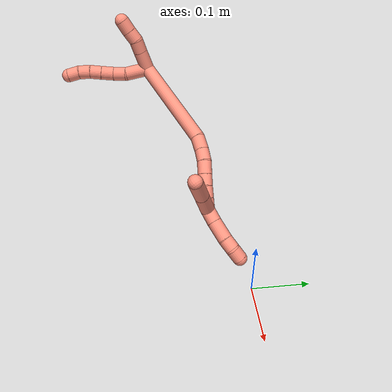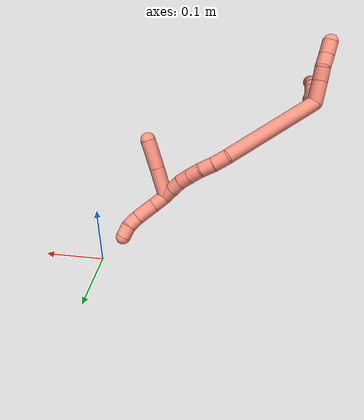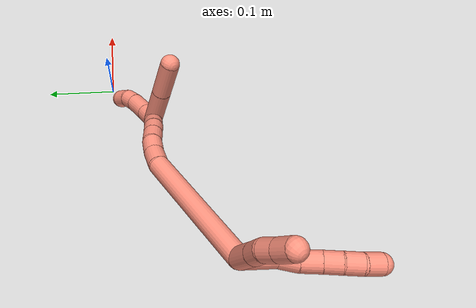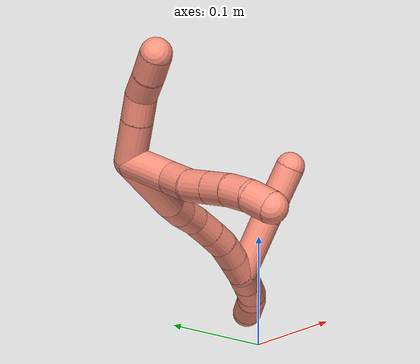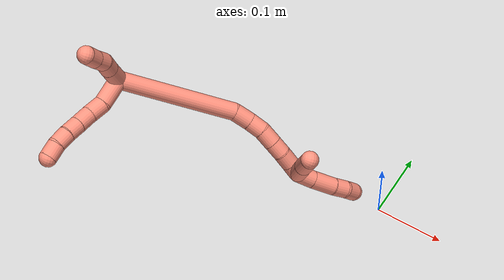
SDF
<sdf version="1.7">
 <world name="default">
  <model name="16">
   <static>0</static>
   <link name="16">
    <collision name="collision-cylinder-e_1_2_8">
     <pose>0.012279 -0.014389 0.007598 1.08495 0.646449 0.398484</pose>
     <geometry><cylinder><radius>0.0125</radius><length>0.040771</length></cylinder></geometry>
     <surface>
      <friction><ode><mu>1.16</mu><mu2>1.16</mu2><slip1>0</slip1><slip2>0</slip2></ode></friction>
      <contact><ode><kp>1e+06</kp><kd>1</kd><max_vel>0</max_vel><min_depth>0.001</min_depth></ode></contact>
     </surface>
    </collision>
    <visual name="visual-cylinder-e_1_2_8">
     <pose>0.012279 -0.014389 0.007598 1.08495 0.646449 0.398484</pose>
     <geometry><cylinder><radius>0.0125</radius><length>0.040771</length></cylinder></geometry>
     <material><ambient>1 0.576471 0.494118 1</ambient></material>
    </visual>
    <collision name="collision-cylinder-e_2_8_9">
     <pose>0.029926 -0.036176 0.022529 0.789854 0.47588 0.201505</pose>
     <geometry><cylinder><radius>0.0125</radius><length>0.023434</length></cylinder></geometry>
     <surface>
      <friction><ode><mu>1.16</mu><mu2>1.16</mu2><slip1>0</slip1><slip2>0</slip2></ode></friction>
      <contact><ode><kp>1e+06</kp><kd>1</kd><max_vel>0</max_vel><min_depth>0.001</min_depth></ode></contact>
     </surface>
    </collision>
    <visual name="visual-cylinder-e_2_8_9">
     <pose>0.029926 -0.036176 0.022529 0.789854 0.47588 0.201505</pose>
     <geometry><cylinder><radius>0.0125</radius><length>0.023434</length></cylinder></geometry>
     <material><ambient>1 0.576471 0.494118 1</ambient></material>
    </visual>
    <collision name="collision-cylinder-e_3_9_10">
     <pose>0.042499 -0.049535 0.036875 0.704432 0.664036 0.252099</pose>
     <geometry><cylinder><radius>0.0125</radius><length>0.023381</length></cylinder></geometry>
     <surface>
      <friction><ode><mu>1.16</mu><mu2>1.16</mu2><slip1>0</slip1><slip2>0</slip2></ode></friction>
      <contact><ode><kp>1e+06</kp><kd>1</kd><max_vel>0</max_vel><min_depth>0.001</min_depth></ode></contact>
     </surface>
    </collision>
    <visual name="visual-cylinder-e_3_9_10">
     <pose>0.042499 -0.049535 0.036875 0.704432 0.664036 0.252099</pose>
     <geometry><cylinder><radius>0.0125</radius><length>0.023381</length></cylinder></geometry>
     <material><ambient>1 0.576471 0.494118 1</ambient></material>
    </visual>
    <collision name="collision-cylinder-e_4_10_11">
     <pose>0.055931 -0.06075 0.050218 0.692808 0.648148 0.241326</pose>
     <geometry><cylinder><radius>0.0125</radius><length>0.020631</length></cylinder></geometry>
     <surface>
      <friction><ode><mu>1.16</mu><mu2>1.16</mu2><slip1>0</slip1><slip2>0</slip2></ode></friction>
      <contact><ode><kp>1e+06</kp><kd>1</kd><max_vel>0</max_vel><min_depth>0.001</min_depth></ode></contact>
     </surface>
    </collision>
    <visual name="visual-cylinder-e_4_10_11">
     <pose>0.055931 -0.06075 0.050218 0.692808 0.648148 0.241326</pose>
     <geometry><cylinder><radius>0.0125</radius><length>0.020631</length></cylinder></geometry>
     <material><ambient>1 0.576471 0.494118 1</ambient></material>
    </visual>
    <collision name="collision-cylinder-e_5_11_12">
     <pose>0.068225 -0.072422 0.062136 0.85437 0.619144 0.289176</pose>
     <geometry><cylinder><radius>0.0125</radius><length>0.020906</length></cylinder></geometry>
     <surface>
      <friction><ode><mu>1.16</mu><mu2>1.16</mu2><slip1>0</slip1><slip2>0</slip2></ode></friction>
      <contact><ode><kp>1e+06</kp><kd>1</kd><max_vel>0</max_vel><min_depth>0.001</min_depth></ode></contact>
     </surface>
    </collision>
    <visual name="visual-cylinder-e_5_11_12">
     <pose>0.068225 -0.072422 0.062136 0.85437 0.619144 0.289176</pose>
     <geometry><cylinder><radius>0.0125</radius><length>0.020906</length></cylinder></geometry>
     <material><ambient>1 0.576471 0.494118 1</ambient></material>
    </visual>
    <collision name="collision-cylinder-e_6_12_6">
     <pose>0.080094 -0.086711 0.071384 1.13566 0.589378 0.382513</pose>
     <geometry><cylinder><radius>0.0125</radius><length>0.020878</length></cylinder></geometry>
     <surface>
      <friction><ode><mu>1.16</mu><mu2>1.16</mu2><slip1>0</slip1><slip2>0</slip2></ode></friction>
      <contact><ode><kp>1e+06</kp><kd>1</kd><max_vel>0</max_vel><min_depth>0.001</min_depth></ode></contact>
     </surface>
    </collision>
    <visual name="visual-cylinder-e_6_12_6">
     <pose>0.080094 -0.086711 0.071384 1.13566 0.589378 0.382513</pose>
     <geometry><cylinder><radius>0.0125</radius><length>0.020878</length></cylinder></geometry>
     <material><ambient>1 0.576471 0.494118 1</ambient></material>
    </visual>
    <collision name="collision-cylinder-e_1_2_13">
     <pose>0.008433 0.010195 0.012185 -0.696728 0.487997 -0.180341</pose>
     <geometry><cylinder><radius>0.0125</radius><length>0.035975</length></cylinder></geometry>
     <surface>
      <friction><ode><mu>1.16</mu><mu2>1.16</mu2><slip1>0</slip1><slip2>0</slip2></ode></friction>
      <contact><ode><kp>1e+06</kp><kd>1</kd><max_vel>0</max_vel><min_depth>0.001</min_depth></ode></contact>
     </surface>
    </collision>
    <visual name="visual-cylinder-e_1_2_13">
     <pose>0.008433 0.010195 0.012185 -0.696728 0.487997 -0.180341</pose>
     <geometry><cylinder><radius>0.0125</radius><length>0.035975</length></cylinder></geometry>
     <material><ambient>1 0.576471 0.494118 1</ambient></material>
    </visual>
    <collision name="collision-cylinder-e_2_13_14">
     <pose>0.022013 0.026825 0.031473 -0.736015 0.492764 -0.193332</pose>
     <geometry><cylinder><radius>0.0125</radius><length>0.021757</length></cylinder></geometry>
     <surface>
      <friction><ode><mu>1.16</mu><mu2>1.16</mu2><slip1>0</slip1><slip2>0</slip2></ode></friction>
      <contact><ode><kp>1e+06</kp><kd>1</kd><max_vel>0</max_vel><min_depth>0.001</min_depth></ode></contact>
     </surface>
    </collision>
    <visual name="visual-cylinder-e_2_13_14">
     <pose>0.022013 0.026825 0.031473 -0.736015 0.492764 -0.193332</pose>
     <geometry><cylinder><radius>0.0125</radius><length>0.021757</length></cylinder></geometry>
     <material><ambient>1 0.576471 0.494118 1</ambient></material>
    </visual>
    <collision name="collision-cylinder-e_3_14_15">
     <pose>0.032276 0.036157 0.046723 -0.341766 0.53438 -0.094405</pose>
     <geometry><cylinder><radius>0.0125</radius><length>0.020093</length></cylinder></geometry>
     <surface>
      <friction><ode><mu>1.16</mu><mu2>1.16</mu2><slip1>0</slip1><slip2>0</slip2></ode></friction>
      <contact><ode><kp>1e+06</kp><kd>1</kd><max_vel>0</max_vel><min_depth>0.001</min_depth></ode></contact>
     </surface>
    </collision>
    <visual name="visual-cylinder-e_3_14_15">
     <pose>0.032276 0.036157 0.046723 -0.341766 0.53438 -0.094405</pose>
     <geometry><cylinder><radius>0.0125</radius><length>0.020093</length></cylinder></geometry>
     <material><ambient>1 0.576471 0.494118 1</ambient></material>
    </visual>
    <collision name="collision-cylinder-e_4_15_5">
     <pose>0.04306 0.043065 0.063514 -0.434324 0.536484 -0.121145</pose>
     <geometry><cylinder><radius>0.0125</radius><length>0.022175</length></cylinder></geometry>
     <surface>
      <friction><ode><mu>1.16</mu><mu2>1.16</mu2><slip1>0</slip1><slip2>0</slip2></ode></friction>
      <contact><ode><kp>1e+06</kp><kd>1</kd><max_vel>0</max_vel><min_depth>0.001</min_depth></ode></contact>
     </surface>
    </collision>
    <visual name="visual-cylinder-e_4_15_5">
     <pose>0.04306 0.043065 0.063514 -0.434324 0.536484 -0.121145</pose>
     <geometry><cylinder><radius>0.0125</radius><length>0.022175</length></cylinder></geometry>
     <material><ambient>1 0.576471 0.494118 1</ambient></material>
    </visual>
    <collision name="collision-cylinder-e_1_2_16">
     <pose>0.00559 0.003261 -0.084385 -3.10297 0.066099 -2.08424</pose>
     <geometry><cylinder><radius>0.0125</radius><length>0.169265</length></cylinder></geometry>
     <surface>
      <friction><ode><mu>1.16</mu><mu2>1.16</mu2><slip1>0</slip1><slip2>0</slip2></ode></friction>
      <contact><ode><kp>1e+06</kp><kd>1</kd><max_vel>0</max_vel><min_depth>0.001</min_depth></ode></contact>
     </surface>
    </collision>
    <visual name="visual-cylinder-e_1_2_16">
     <pose>0.00559 0.003261 -0.084385 -3.10297 0.066099 -2.08424</pose>
     <geometry><cylinder><radius>0.0125</radius><length>0.169265</length></cylinder></geometry>
     <material><ambient>1 0.576471 0.494118 1</ambient></material>
    </visual>
    <collision name="collision-cylinder-e_2_16_17">
     <pose>0.014055 0.003972 -0.180842 2.93349 0.228916 1.66674</pose>
     <geometry><cylinder><radius>0.0125</radius><length>0.02534</length></cylinder></geometry>
     <surface>
      <friction><ode><mu>1.16</mu><mu2>1.16</mu2><slip1>0</slip1><slip2>0</slip2></ode></friction>
      <contact><ode><kp>1e+06</kp><kd>1</kd><max_vel>0</max_vel><min_depth>0.001</min_depth></ode></contact>
     </surface>
    </collision>
    <visual name="visual-cylinder-e_2_16_17">
     <pose>0.014055 0.003972 -0.180842 2.93349 0.228916 1.66674</pose>
     <geometry><cylinder><radius>0.0125</radius><length>0.02534</length></cylinder></geometry>
     <material><ambient>1 0.576471 0.494118 1</ambient></material>
    </visual>
    <collision name="collision-cylinder-e_3_17_18">
     <pose>0.020701 -0.000912 -0.203003 2.91418 0.349275 1.99272</pose>
     <geometry><cylinder><radius>0.0125</radius><length>0.022039</length></cylinder></geometry>
     <surface>
      <friction><ode><mu>1.16</mu><mu2>1.16</mu2><slip1>0</slip1><slip2>0</slip2></ode></friction>
      <contact><ode><kp>1e+06</kp><kd>1</kd><max_vel>0</max_vel><min_depth>0.001</min_depth></ode></contact>
     </surface>
    </collision>
    <visual name="visual-cylinder-e_3_17_18">
     <pose>0.020701 -0.000912 -0.203003 2.91418 0.349275 1.99272</pose>
     <geometry><cylinder><radius>0.0125</radius><length>0.022039</length></cylinder></geometry>
     <material><ambient>1 0.576471 0.494118 1</ambient></material>
    </visual>
    <collision name="collision-cylinder-e_4_18_19">
     <pose>0.02838 -0.008184 -0.222826 2.67221 0.343715 1.25584</pose>
     <geometry><cylinder><radius>0.0125</radius><length>0.023188</length></cylinder></geometry>
     <surface>
      <friction><ode><mu>1.16</mu><mu2>1.16</mu2><slip1>0</slip1><slip2>0</slip2></ode></friction>
      <contact><ode><kp>1e+06</kp><kd>1</kd><max_vel>0</max_vel><min_depth>0.001</min_depth></ode></contact>
     </surface>
    </collision>
    <visual name="visual-cylinder-e_4_18_19">
     <pose>0.02838 -0.008184 -0.222826 2.67221 0.343715 1.25584</pose>
     <geometry><cylinder><radius>0.0125</radius><length>0.023188</length></cylinder></geometry>
     <material><ambient>1 0.576471 0.494118 1</ambient></material>
    </visual>
    <collision name="collision-cylinder-e_5_19_20">
     <pose>0.035363 -0.017559 -0.241025 2.65872 0.311427 1.13511</pose>
     <geometry><cylinder><radius>0.0125</radius><length>0.020078</length></cylinder></geometry>
     <surface>
      <friction><ode><mu>1.16</mu><mu2>1.16</mu2><slip1>0</slip1><slip2>0</slip2></ode></friction>
      <contact><ode><kp>1e+06</kp><kd>1</kd><max_vel>0</max_vel><min_depth>0.001</min_depth></ode></contact>
     </surface>
    </collision>
    <visual name="visual-cylinder-e_5_19_20">
     <pose>0.035363 -0.017559 -0.241025 2.65872 0.311427 1.13511</pose>
     <geometry><cylinder><radius>0.0125</radius><length>0.020078</length></cylinder></geometry>
     <material><ambient>1 0.576471 0.494118 1</ambient></material>
    </visual>
    <collision name="collision-cylinder-e_6_20_21">
     <pose>0.039977 -0.027103 -0.257966 2.59943 0.154176 0.542164</pose>
     <geometry><cylinder><radius>0.0125</radius><length>0.020032</length></cylinder></geometry>
     <surface>
      <friction><ode><mu>1.16</mu><mu2>1.16</mu2><slip1>0</slip1><slip2>0</slip2></ode></friction>
      <contact><ode><kp>1e+06</kp><kd>1</kd><max_vel>0</max_vel><min_depth>0.001</min_depth></ode></contact>
     </surface>
    </collision>
    <visual name="visual-cylinder-e_6_20_21">
     <pose>0.039977 -0.027103 -0.257966 2.59943 0.154176 0.542164</pose>
     <geometry><cylinder><radius>0.0125</radius><length>0.020032</length></cylinder></geometry>
     <material><ambient>1 0.576471 0.494118 1</ambient></material>
    </visual>
    <collision name="collision-cylinder-e_7_21_1">
     <pose>0.042786 -0.037565 -0.274828 2.57315 0.127036 0.428753</pose>
     <geometry><cylinder><radius>0.0125</radius><length>0.020058</length></cylinder></geometry>
     <surface>
      <friction><ode><mu>1.16</mu><mu2>1.16</mu2><slip1>0</slip1><slip2>0</slip2></ode></friction>
      <contact><ode><kp>1e+06</kp><kd>1</kd><max_vel>0</max_vel><min_depth>0.001</min_depth></ode></contact>
     </surface>
    </collision>
    <visual name="visual-cylinder-e_7_21_1">
     <pose>0.042786 -0.037565 -0.274828 2.57315 0.127036 0.428753</pose>
     <geometry><cylinder><radius>0.0125</radius><length>0.020058</length></cylinder></geometry>
     <material><ambient>1 0.576471 0.494118 1</ambient></material>
    </visual>
    <collision name="collision-cylinder-e_1_1_22">
     <pose>0.062244 -0.026662 -0.275256 -1.11572 0.787795 -0.507487</pose>
     <geometry><cylinder><radius>0.0125</radius><length>0.05132</length></cylinder></geometry>
     <surface>
      <friction><ode><mu>1.16</mu><mu2>1.16</mu2><slip1>0</slip1><slip2>0</slip2></ode></friction>
      <contact><ode><kp>1e+06</kp><kd>1</kd><max_vel>0</max_vel><min_depth>0.001</min_depth></ode></contact>
     </surface>
    </collision>
    <visual name="visual-cylinder-e_1_1_22">
     <pose>0.062244 -0.026662 -0.275256 -1.11572 0.787795 -0.507487</pose>
     <geometry><cylinder><radius>0.0125</radius><length>0.05132</length></cylinder></geometry>
     <material><ambient>1 0.576471 0.494118 1</ambient></material>
    </visual>
    <collision name="collision-cylinder-e_2_22_4">
     <pose>0.097924 0.004933 -0.260141 -1.13406 0.80186 -0.527286</pose>
     <geometry><cylinder><radius>0.0125</radius><length>0.04868</length></cylinder></geometry>
     <surface>
      <friction><ode><mu>1.16</mu><mu2>1.16</mu2><slip1>0</slip1><slip2>0</slip2></ode></friction>
      <contact><ode><kp>1e+06</kp><kd>1</kd><max_vel>0</max_vel><min_depth>0.001</min_depth></ode></contact>
     </surface>
    </collision>
    <visual name="visual-cylinder-e_2_22_4">
     <pose>0.097924 0.004933 -0.260141 -1.13406 0.80186 -0.527286</pose>
     <geometry><cylinder><radius>0.0125</radius><length>0.04868</length></cylinder></geometry>
     <material><ambient>1 0.576471 0.494118 1</ambient></material>
    </visual>
    <collision name="collision-cylinder-e_1_1_23">
     <pose>0.044326 -0.04444 -0.295327 3.01682 0.022093 0.350054</pose>
     <geometry><cylinder><radius>0.0125</radius><length>0.024426</length></cylinder></geometry>
     <surface>
      <friction><ode><mu>1.16</mu><mu2>1.16</mu2><slip1>0</slip1><slip2>0</slip2></ode></friction>
      <contact><ode><kp>1e+06</kp><kd>1</kd><max_vel>0</max_vel><min_depth>0.001</min_depth></ode></contact>
     </surface>
    </collision>
    <visual name="visual-cylinder-e_1_1_23">
     <pose>0.044326 -0.04444 -0.295327 3.01682 0.022093 0.350054</pose>
     <geometry><cylinder><radius>0.0125</radius><length>0.024426</length></cylinder></geometry>
     <material><ambient>1 0.576471 0.494118 1</ambient></material>
    </visual>
    <collision name="collision-cylinder-e_2_23_24">
     <pose>0.044686 -0.047027 -0.324756 3.07999 0.005179 0.167712</pose>
     <geometry><cylinder><radius>0.0125</radius><length>0.034693</length></cylinder></geometry>
     <surface>
      <friction><ode><mu>1.16</mu><mu2>1.16</mu2><slip1>0</slip1><slip2>0</slip2></ode></friction>
      <contact><ode><kp>1e+06</kp><kd>1</kd><max_vel>0</max_vel><min_depth>0.001</min_depth></ode></contact>
     </surface>
    </collision>
    <visual name="visual-cylinder-e_2_23_24">
     <pose>0.044686 -0.047027 -0.324756 3.07999 0.005179 0.167712</pose>
     <geometry><cylinder><radius>0.0125</radius><length>0.034693</length></cylinder></geometry>
     <material><ambient>1 0.576471 0.494118 1</ambient></material>
    </visual>
    <collision name="collision-cylinder-e_3_24_25">
     <pose>0.043599 -0.048531 -0.352066 3.09798 -0.117063 -2.42902</pose>
     <geometry><cylinder><radius>0.0125</radius><length>0.020151</length></cylinder></geometry>
     <surface>
      <friction><ode><mu>1.16</mu><mu2>1.16</mu2><slip1>0</slip1><slip2>0</slip2></ode></friction>
      <contact><ode><kp>1e+06</kp><kd>1</kd><max_vel>0</max_vel><min_depth>0.001</min_depth></ode></contact>
     </surface>
    </collision>
    <visual name="visual-cylinder-e_3_24_25">
     <pose>0.043599 -0.048531 -0.352066 3.09798 -0.117063 -2.42902</pose>
     <geometry><cylinder><radius>0.0125</radius><length>0.020151</length></cylinder></geometry>
     <material><ambient>1 0.576471 0.494118 1</ambient></material>
    </visual>
    <collision name="collision-cylinder-e_4_25_3">
     <pose>0.038418 -0.051364 -0.371318 2.88821 -0.396667 -2.01181</pose>
     <geometry><cylinder><radius>0.0125</radius><length>0.02073</length></cylinder></geometry>
     <surface>
      <friction><ode><mu>1.16</mu><mu2>1.16</mu2><slip1>0</slip1><slip2>0</slip2></ode></friction>
      <contact><ode><kp>1e+06</kp><kd>1</kd><max_vel>0</max_vel><min_depth>0.001</min_depth></ode></contact>
     </surface>
    </collision>
    <visual name="visual-cylinder-e_4_25_3">
     <pose>0.038418 -0.051364 -0.371318 2.88821 -0.396667 -2.01181</pose>
     <geometry><cylinder><radius>0.0125</radius><length>0.02073</length></cylinder></geometry>
     <material><ambient>1 0.576471 0.494118 1</ambient></material>
    </visual>
    <collision name="collision-sphere-3">
     <pose>0.034413 -0.053761 -0.380573 0 -0 0</pose>
     <geometry><sphere><radius>0.0125</radius></sphere></geometry>
     <surface>
      <friction><ode><mu>1.16</mu><mu2>1.16</mu2><slip1>0</slip1><slip2>0</slip2></ode></friction>
      <contact><ode><kp>1e+06</kp><kd>1</kd><max_vel>0</max_vel><min_depth>0.001</min_depth></ode></contact>
     </surface>
    </collision>
    <visual name="visual-sphere-3">
     <pose>0.034413 -0.053761 -0.380573 0 -0 0</pose>
     <geometry><sphere><radius>0.0125</radius></sphere></geometry>
     <material><ambient>1 0.576471 0.494118 1</ambient></material>
    </visual>
    <collision name="collision-sphere-25">
     <pose>0.042422 -0.048968 -0.362063 0 -0 0</pose>
     <geometry><sphere><radius>0.0125</radius></sphere></geometry>
     <surface>
      <friction><ode><mu>1.16</mu><mu2>1.16</mu2><slip1>0</slip1><slip2>0</slip2></ode></friction>
      <contact><ode><kp>1e+06</kp><kd>1</kd><max_vel>0</max_vel><min_depth>0.001</min_depth></ode></contact>
     </surface>
    </collision>
    <visual name="visual-sphere-25">
     <pose>0.042422 -0.048968 -0.362063 0 -0 0</pose>
     <geometry><sphere><radius>0.0125</radius></sphere></geometry>
     <material><ambient>1 0.576471 0.494118 1</ambient></material>
    </visual>
    <collision name="collision-sphere-24">
     <pose>0.044776 -0.048095 -0.342069 0 -0 0</pose>
     <geometry><sphere><radius>0.0125</radius></sphere></geometry>
     <surface>
      <friction><ode><mu>1.16</mu><mu2>1.16</mu2><slip1>0</slip1><slip2>0</slip2></ode></friction>
      <contact><ode><kp>1e+06</kp><kd>1</kd><max_vel>0</max_vel><min_depth>0.001</min_depth></ode></contact>
     </surface>
    </collision>
    <visual name="visual-sphere-24">
     <pose>0.044776 -0.048095 -0.342069 0 -0 0</pose>
     <geometry><sphere><radius>0.0125</radius></sphere></geometry>
     <material><ambient>1 0.576471 0.494118 1</ambient></material>
    </visual>
    <collision name="collision-sphere-23">
     <pose>0.044596 -0.04596 -0.307442 0 -0 0</pose>
     <geometry><sphere><radius>0.0125</radius></sphere></geometry>
     <surface>
      <friction><ode><mu>1.16</mu><mu2>1.16</mu2><slip1>0</slip1><slip2>0</slip2></ode></friction>
      <contact><ode><kp>1e+06</kp><kd>1</kd><max_vel>0</max_vel><min_depth>0.001</min_depth></ode></contact>
     </surface>
    </collision>
    <visual name="visual-sphere-23">
     <pose>0.044596 -0.04596 -0.307442 0 -0 0</pose>
     <geometry><sphere><radius>0.0125</radius></sphere></geometry>
     <material><ambient>1 0.576471 0.494118 1</ambient></material>
    </visual>
    <collision name="collision-sphere-4">
     <pose>0.115416 0.02027 -0.252982 0 -0 0</pose>
     <geometry><sphere><radius>0.0125</radius></sphere></geometry>
     <surface>
      <friction><ode><mu>1.16</mu><mu2>1.16</mu2><slip1>0</slip1><slip2>0</slip2></ode></friction>
      <contact><ode><kp>1e+06</kp><kd>1</kd><max_vel>0</max_vel><min_depth>0.001</min_depth></ode></contact>
     </surface>
    </collision>
    <visual name="visual-sphere-4">
     <pose>0.115416 0.02027 -0.252982 0 -0 0</pose>
     <geometry><sphere><radius>0.0125</radius></sphere></geometry>
     <material><ambient>1 0.576471 0.494118 1</ambient></material>
    </visual>
    <collision name="collision-sphere-22">
     <pose>0.080432 -0.010403 -0.2673 0 -0 0</pose>
     <geometry><sphere><radius>0.0125</radius></sphere></geometry>
     <surface>
      <friction><ode><mu>1.16</mu><mu2>1.16</mu2><slip1>0</slip1><slip2>0</slip2></ode></friction>
      <contact><ode><kp>1e+06</kp><kd>1</kd><max_vel>0</max_vel><min_depth>0.001</min_depth></ode></contact>
     </surface>
    </collision>
    <visual name="visual-sphere-22">
     <pose>0.080432 -0.010403 -0.2673 0 -0 0</pose>
     <geometry><sphere><radius>0.0125</radius></sphere></geometry>
     <material><ambient>1 0.576471 0.494118 1</ambient></material>
    </visual>
    <collision name="collision-sphere-1">
     <pose>0.044056 -0.04292 -0.283212 0 -0 0</pose>
     <geometry><sphere><radius>0.0125</radius></sphere></geometry>
     <surface>
      <friction><ode><mu>1.16</mu><mu2>1.16</mu2><slip1>0</slip1><slip2>0</slip2></ode></friction>
      <contact><ode><kp>1e+06</kp><kd>1</kd><max_vel>0</max_vel><min_depth>0.001</min_depth></ode></contact>
     </surface>
    </collision>
    <visual name="visual-sphere-1">
     <pose>0.044056 -0.04292 -0.283212 0 -0 0</pose>
     <geometry><sphere><radius>0.0125</radius></sphere></geometry>
     <material><ambient>1 0.576471 0.494118 1</ambient></material>
    </visual>
    <collision name="collision-sphere-21">
     <pose>0.041515 -0.03221 -0.266444 0 -0 0</pose>
     <geometry><sphere><radius>0.0125</radius></sphere></geometry>
     <surface>
      <friction><ode><mu>1.16</mu><mu2>1.16</mu2><slip1>0</slip1><slip2>0</slip2></ode></friction>
      <contact><ode><kp>1e+06</kp><kd>1</kd><max_vel>0</max_vel><min_depth>0.001</min_depth></ode></contact>
     </surface>
    </collision>
    <visual name="visual-sphere-21">
     <pose>0.041515 -0.03221 -0.266444 0 -0 0</pose>
     <geometry><sphere><radius>0.0125</radius></sphere></geometry>
     <material><ambient>1 0.576471 0.494118 1</ambient></material>
    </visual>
    <collision name="collision-sphere-12">
     <pose>0.074291 -0.078842 0.067726 0 -0 0</pose>
     <geometry><sphere><radius>0.0125</radius></sphere></geometry>
     <surface>
      <friction><ode><mu>1.16</mu><mu2>1.16</mu2><slip1>0</slip1><slip2>0</slip2></ode></friction>
      <contact><ode><kp>1e+06</kp><kd>1</kd><max_vel>0</max_vel><min_depth>0.001</min_depth></ode></contact>
     </surface>
    </collision>
    <visual name="visual-sphere-12">
     <pose>0.074291 -0.078842 0.067726 0 -0 0</pose>
     <geometry><sphere><radius>0.0125</radius></sphere></geometry>
     <material><ambient>1 0.576471 0.494118 1</ambient></material>
    </visual>
    <collision name="collision-sphere-11">
     <pose>0.062159 -0.066002 0.056546 0 -0 0</pose>
     <geometry><sphere><radius>0.0125</radius></sphere></geometry>
     <surface>
      <friction><ode><mu>1.16</mu><mu2>1.16</mu2><slip1>0</slip1><slip2>0</slip2></ode></friction>
      <contact><ode><kp>1e+06</kp><kd>1</kd><max_vel>0</max_vel><min_depth>0.001</min_depth></ode></contact>
     </surface>
    </collision>
    <visual name="visual-sphere-11">
     <pose>0.062159 -0.066002 0.056546 0 -0 0</pose>
     <geometry><sphere><radius>0.0125</radius></sphere></geometry>
     <material><ambient>1 0.576471 0.494118 1</ambient></material>
    </visual>
    <collision name="collision-sphere-10">
     <pose>0.049704 -0.055497 0.04389 0 -0 0</pose>
     <geometry><sphere><radius>0.0125</radius></sphere></geometry>
     <surface>
      <friction><ode><mu>1.16</mu><mu2>1.16</mu2><slip1>0</slip1><slip2>0</slip2></ode></friction>
      <contact><ode><kp>1e+06</kp><kd>1</kd><max_vel>0</max_vel><min_depth>0.001</min_depth></ode></contact>
     </surface>
    </collision>
    <visual name="visual-sphere-10">
     <pose>0.049704 -0.055497 0.04389 0 -0 0</pose>
     <geometry><sphere><radius>0.0125</radius></sphere></geometry>
     <material><ambient>1 0.576471 0.494118 1</ambient></material>
    </visual>
    <collision name="collision-sphere-9">
     <pose>0.035294 -0.043573 0.02986 0 -0 0</pose>
     <geometry><sphere><radius>0.0125</radius></sphere></geometry>
     <surface>
      <friction><ode><mu>1.16</mu><mu2>1.16</mu2><slip1>0</slip1><slip2>0</slip2></ode></friction>
      <contact><ode><kp>1e+06</kp><kd>1</kd><max_vel>0</max_vel><min_depth>0.001</min_depth></ode></contact>
     </surface>
    </collision>
    <visual name="visual-sphere-9">
     <pose>0.035294 -0.043573 0.02986 0 -0 0</pose>
     <geometry><sphere><radius>0.0125</radius></sphere></geometry>
     <material><ambient>1 0.576471 0.494118 1</ambient></material>
    </visual>
    <collision name="collision-sphere-2">
     <geometry><sphere><radius>0.0125</radius></sphere></geometry>
     <surface>
      <friction><ode><mu>1.16</mu><mu2>1.16</mu2><slip1>0</slip1><slip2>0</slip2></ode></friction>
      <contact><ode><kp>1e+06</kp><kd>1</kd><max_vel>0</max_vel><min_depth>0.001</min_depth></ode></contact>
     </surface>
    </collision>
    <visual name="visual-sphere-2">
     <geometry><sphere><radius>0.0125</radius></sphere></geometry>
     <material><ambient>1 0.576471 0.494118 1</ambient></material>
    </visual>
    <collision name="collision-sphere-19">
     <pose>0.032287 -0.013122 -0.232562 0 -0 0</pose>
     <geometry><sphere><radius>0.0125</radius></sphere></geometry>
     <surface>
      <friction><ode><mu>1.16</mu><mu2>1.16</mu2><slip1>0</slip1><slip2>0</slip2></ode></friction>
      <contact><ode><kp>1e+06</kp><kd>1</kd><max_vel>0</max_vel><min_depth>0.001</min_depth></ode></contact>
     </surface>
    </collision>
    <visual name="visual-sphere-19">
     <pose>0.032287 -0.013122 -0.232562 0 -0 0</pose>
     <geometry><sphere><radius>0.0125</radius></sphere></geometry>
     <material><ambient>1 0.576471 0.494118 1</ambient></material>
    </visual>
    <collision name="collision-sphere-8">
     <pose>0.024559 -0.028779 0.015197 0 -0 0</pose>
     <geometry><sphere><radius>0.0125</radius></sphere></geometry>
     <surface>
      <friction><ode><mu>1.16</mu><mu2>1.16</mu2><slip1>0</slip1><slip2>0</slip2></ode></friction>
      <contact><ode><kp>1e+06</kp><kd>1</kd><max_vel>0</max_vel><min_depth>0.001</min_depth></ode></contact>
     </surface>
    </collision>
    <visual name="visual-sphere-8">
     <pose>0.024559 -0.028779 0.015197 0 -0 0</pose>
     <geometry><sphere><radius>0.0125</radius></sphere></geometry>
     <material><ambient>1 0.576471 0.494118 1</ambient></material>
    </visual>
    <collision name="collision-sphere-6">
     <pose>0.085896 -0.09458 0.075042 0 -0 0</pose>
     <geometry><sphere><radius>0.0125</radius></sphere></geometry>
     <surface>
      <friction><ode><mu>1.16</mu><mu2>1.16</mu2><slip1>0</slip1><slip2>0</slip2></ode></friction>
      <contact><ode><kp>1e+06</kp><kd>1</kd><max_vel>0</max_vel><min_depth>0.001</min_depth></ode></contact>
     </surface>
    </collision>
    <visual name="visual-sphere-6">
     <pose>0.085896 -0.09458 0.075042 0 -0 0</pose>
     <geometry><sphere><radius>0.0125</radius></sphere></geometry>
     <material><ambient>1 0.576471 0.494118 1</ambient></material>
    </visual>
    <collision name="collision-sphere-13">
     <pose>0.016867 0.020391 0.02437 0 -0 0</pose>
     <geometry><sphere><radius>0.0125</radius></sphere></geometry>
     <surface>
      <friction><ode><mu>1.16</mu><mu2>1.16</mu2><slip1>0</slip1><slip2>0</slip2></ode></friction>
      <contact><ode><kp>1e+06</kp><kd>1</kd><max_vel>0</max_vel><min_depth>0.001</min_depth></ode></contact>
     </surface>
    </collision>
    <visual name="visual-sphere-13">
     <pose>0.016867 0.020391 0.02437 0 -0 0</pose>
     <geometry><sphere><radius>0.0125</radius></sphere></geometry>
     <material><ambient>1 0.576471 0.494118 1</ambient></material>
    </visual>
    <collision name="collision-sphere-14">
     <pose>0.027159 0.033259 0.038577 0 -0 0</pose>
     <geometry><sphere><radius>0.0125</radius></sphere></geometry>
     <surface>
      <friction><ode><mu>1.16</mu><mu2>1.16</mu2><slip1>0</slip1><slip2>0</slip2></ode></friction>
      <contact><ode><kp>1e+06</kp><kd>1</kd><max_vel>0</max_vel><min_depth>0.001</min_depth></ode></contact>
     </surface>
    </collision>
    <visual name="visual-sphere-14">
     <pose>0.027159 0.033259 0.038577 0 -0 0</pose>
     <geometry><sphere><radius>0.0125</radius></sphere></geometry>
     <material><ambient>1 0.576471 0.494118 1</ambient></material>
    </visual>
    <collision name="collision-sphere-15">
     <pose>0.037393 0.039055 0.054869 0 -0 0</pose>
     <geometry><sphere><radius>0.0125</radius></sphere></geometry>
     <surface>
      <friction><ode><mu>1.16</mu><mu2>1.16</mu2><slip1>0</slip1><slip2>0</slip2></ode></friction>
      <contact><ode><kp>1e+06</kp><kd>1</kd><max_vel>0</max_vel><min_depth>0.001</min_depth></ode></contact>
     </surface>
    </collision>
    <visual name="visual-sphere-15">
     <pose>0.037393 0.039055 0.054869 0 -0 0</pose>
     <geometry><sphere><radius>0.0125</radius></sphere></geometry>
     <material><ambient>1 0.576471 0.494118 1</ambient></material>
    </visual>
    <collision name="collision-sphere-5">
     <pose>0.048727 0.047075 0.072159 0 -0 0</pose>
     <geometry><sphere><radius>0.0125</radius></sphere></geometry>
     <surface>
      <friction><ode><mu>1.16</mu><mu2>1.16</mu2><slip1>0</slip1><slip2>0</slip2></ode></friction>
      <contact><ode><kp>1e+06</kp><kd>1</kd><max_vel>0</max_vel><min_depth>0.001</min_depth></ode></contact>
     </surface>
    </collision>
    <visual name="visual-sphere-5">
     <pose>0.048727 0.047075 0.072159 0 -0 0</pose>
     <geometry><sphere><radius>0.0125</radius></sphere></geometry>
     <material><ambient>1 0.576471 0.494118 1</ambient></material>
    </visual>
    <collision name="collision-sphere-16">
     <pose>0.01118 0.006521 -0.168769 0 -0 0</pose>
     <geometry><sphere><radius>0.0125</radius></sphere></geometry>
     <surface>
      <friction><ode><mu>1.16</mu><mu2>1.16</mu2><slip1>0</slip1><slip2>0</slip2></ode></friction>
      <contact><ode><kp>1e+06</kp><kd>1</kd><max_vel>0</max_vel><min_depth>0.001</min_depth></ode></contact>
     </surface>
    </collision>
    <visual name="visual-sphere-16">
     <pose>0.01118 0.006521 -0.168769 0 -0 0</pose>
     <geometry><sphere><radius>0.0125</radius></sphere></geometry>
     <material><ambient>1 0.576471 0.494118 1</ambient></material>
    </visual>
    <collision name="collision-sphere-17">
     <pose>0.01693 0.001423 -0.192915 0 -0 0</pose>
     <geometry><sphere><radius>0.0125</radius></sphere></geometry>
     <surface>
      <friction><ode><mu>1.16</mu><mu2>1.16</mu2><slip1>0</slip1><slip2>0</slip2></ode></friction>
      <contact><ode><kp>1e+06</kp><kd>1</kd><max_vel>0</max_vel><min_depth>0.001</min_depth></ode></contact>
     </surface>
    </collision>
    <visual name="visual-sphere-17">
     <pose>0.01693 0.001423 -0.192915 0 -0 0</pose>
     <geometry><sphere><radius>0.0125</radius></sphere></geometry>
     <material><ambient>1 0.576471 0.494118 1</ambient></material>
    </visual>
    <collision name="collision-sphere-18">
     <pose>0.024472 -0.003246 -0.213091 0 -0 0</pose>
     <geometry><sphere><radius>0.0125</radius></sphere></geometry>
     <surface>
      <friction><ode><mu>1.16</mu><mu2>1.16</mu2><slip1>0</slip1><slip2>0</slip2></ode></friction>
      <contact><ode><kp>1e+06</kp><kd>1</kd><max_vel>0</max_vel><min_depth>0.001</min_depth></ode></contact>
     </surface>
    </collision>
    <visual name="visual-sphere-18">
     <pose>0.024472 -0.003246 -0.213091 0 -0 0</pose>
     <geometry><sphere><radius>0.0125</radius></sphere></geometry>
     <material><ambient>1 0.576471 0.494118 1</ambient></material>
    </visual>
    <collision name="collision-sphere-20">
     <pose>0.038439 -0.021996 -0.249489 0 -0 0</pose>
     <geometry><sphere><radius>0.0125</radius></sphere></geometry>
     <surface>
      <friction><ode><mu>1.16</mu><mu2>1.16</mu2><slip1>0</slip1><slip2>0</slip2></ode></friction>
      <contact><ode><kp>1e+06</kp><kd>1</kd><max_vel>0</max_vel><min_depth>0.001</min_depth></ode></contact>
     </surface>
    </collision>
    <visual name="visual-sphere-20">
     <pose>0.038439 -0.021996 -0.249489 0 -0 0</pose>
     <geometry><sphere><radius>0.0125</radius></sphere></geometry>
     <material><ambient>1 0.576471 0.494118 1</ambient></material>
    </visual>
    <inertial>
     <pose>0.034518 -0.01551 -0.12679 0 -0 0</pose>
     <mass>0.75</mass>
     <inertia>
      <ixx>-0.000494</ixx>
      <ixy>0</ixy>
      <ixz>0</ixz>
      <iyy>-0.000125</iyy>
      <iyz>0</iyz>
      <izz>-9.8e-05</izz>
     </inertia>
    </inertial>
   </link>
   <pose>-0.334863 -0.145416 0.244734 1.05924 -0.371258 -0.79666</pose>
  </model>
 </world>
</sdf>
